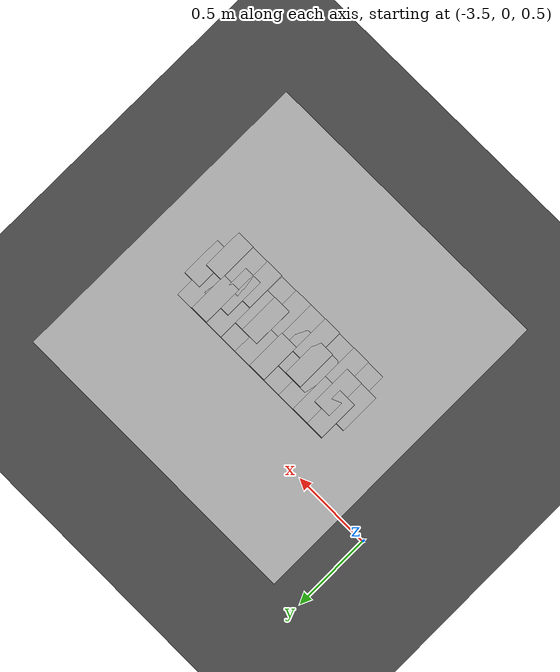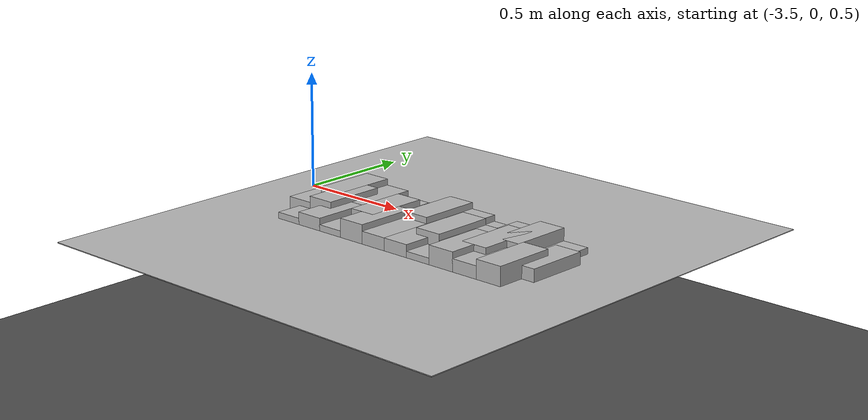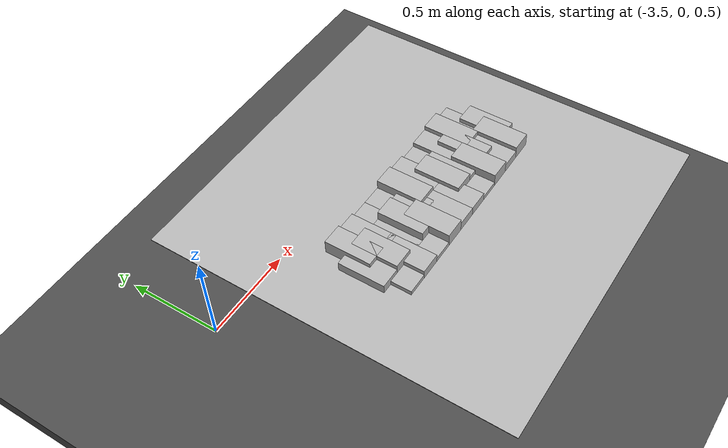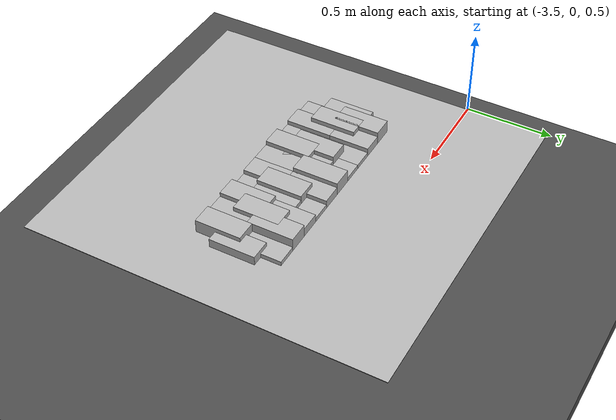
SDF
<sdf version="1.6">
 <world name="default">
  <model name="ground_plane">
   <static>1</static>
   <link name="link">
    <collision name="collision">
     <geometry><plane><normal>0 0 1</normal><size>100 100</size></plane></geometry>
     <surface><friction><ode><mu>100</mu><mu2>50</mu2></ode></friction></surface>
    </collision>
    <visual name="visual">
     <cast_shadows>0</cast_shadows>
     <geometry><plane><normal>0 0 1</normal><size>100 100</size></plane></geometry>
     <material>
      <script><uri>file://media/materials/scripts/gazebo.material</uri><name>Gazebo/Grey</name></script>
     </material>
    </visual>
   </link>
  </model>
  <model name="frc2016_roughterrain_0">
   <link name="link_clone_8">
    <pose>-2.257 -0.51186 -0.073164 0 -0 0</pose>
    <inertial>
     <inertia><ixx>nan</ixx><ixy>0</ixy><ixz>0</ixz><iyy>nan</iyy><iyz>0</iyz><izz>nan</izz></inertia>
     <mass>0</mass>
    </inertial>
    <visual name="row1_block5_md">
     <pose>0.05715 0.1143 0.10968 0 -0 0</pose>
     <geometry><box><size>0.115452 0.257474 0.0508</size></box></geometry>
     <material><shader type="pixel"/></material>
    </visual>
    <visual name="row1_block3_md">
     <pose>0.28575 0.1143 0.10968 0 -0 0</pose>
     <geometry><box><size>0.115452 0.257474 0.0508</size></box></geometry>
     <material><shader type="pixel"/></material>
    </visual>
    <visual name="row1_block6_lg">
     <pose>-0.05715 0.1143 0.12238 0 -0 0</pose>
     <geometry><box><size>0.115452 0.257474 0.0762</size></box></geometry>
     <material><shader type="pixel"/></material>
    </visual>
    <visual name="row1_block4_sm">
     <pose>0.17145 0.1143 0.09698 0 -0 0</pose>
     <geometry><box><size>0.115452 0.257474 0.0254</size></box></geometry>
     <material><shader type="pixel"/></material>
    </visual>
    <visual name="platform">
     <pose>0 0 0.08269 0 -0 0</pose>
     <geometry><box><size>1.91826 2.01688 0.003175</size></box></geometry>
     <material><shader type="pixel"/></material>
    </visual>
    <visual name="row1_block1_sm">
     <pose>0.51435 0.1143 0.09698 0 -0 0</pose>
     <geometry><box><size>0.115452 0.257474 0.0254</size></box></geometry>
     <material><shader type="pixel"/></material>
    </visual>
    <visual name="row1_block2_lg">
     <pose>0.40005 0.1143 0.12238 0 -0 0</pose>
     <geometry><box><size>0.115452 0.257474 0.0762</size></box></geometry>
     <material><shader type="pixel"/></material>
    </visual>
    <visual name="row1_block7_sm">
     <pose>-0.17145 0.1143 0.09698 0 -0 0</pose>
     <geometry><box><size>0.115452 0.257474 0.0254</size></box></geometry>
     <material><shader type="pixel"/></material>
    </visual>
    <visual name="row1_block8_sm">
     <pose>-0.28575 0.1143 0.09698 0 -0 0</pose>
     <geometry><box><size>0.115452 0.257474 0.0254</size></box></geometry>
     <material><shader type="pixel"/></material>
    </visual>
    <visual name="row1_block10_lg">
     <pose>-0.51435 0.1143 0.12238 0 -0 0</pose>
     <geometry><box><size>0.115452 0.257474 0.0762</size></box></geometry>
     <material><shader type="pixel"/></material>
    </visual>
    <visual name="row1_block9_md">
     <pose>-0.40005 0.1143 0.10968 0 -0 0</pose>
     <geometry><box><size>0.115452 0.257474 0.0508</size></box></geometry>
     <material><shader type="pixel"/></material>
    </visual>
    <visual name="row2_block1_md">
     <pose>0.5715 0 0.10968 0 -0 0</pose>
     <geometry><box><size>0.115452 0.257474 0.0508</size></box></geometry>
     <material><shader type="pixel"/></material>
    </visual>
    <visual name="row2_block2_sm">
     <pose>0.4572 0 0.09698 0 -0 0</pose>
     <geometry><box><size>0.115452 0.257474 0.0254</size></box></geometry>
     <material><shader type="pixel"/></material>
    </visual>
    <visual name="row2_block3_lg">
     <pose>0.3429 0 0.12238 0 -0 0</pose>
     <geometry><box><size>0.115452 0.257474 0.0762</size></box></geometry>
     <material><shader type="pixel"/></material>
    </visual>
    <visual name="row2_block4_md">
     <pose>0.2286 0 0.10968 0 -0 0</pose>
     <geometry><box><size>0.115452 0.257474 0.0508</size></box></geometry>
     <material><shader type="pixel"/></material>
    </visual>
    <visual name="row2_block5_lg">
     <pose>0.1143 0 0.12238 0 -0 0</pose>
     <geometry><box><size>0.115452 0.257474 0.0762</size></box></geometry>
     <material><shader type="pixel"/></material>
    </visual>
    <visual name="row2_block6_sm">
     <pose>0 0 0.09698 0 -0 0</pose>
     <geometry><box><size>0.115452 0.257474 0.0254</size></box></geometry>
     <material><shader type="pixel"/></material>
    </visual>
    <visual name="row2_block7_md">
     <pose>-0.1143 0 0.10968 0 -0 0</pose>
     <geometry><box><size>0.115452 0.257474 0.0508</size></box></geometry>
     <material><shader type="pixel"/></material>
    </visual>
    <visual name="row2_block8_lg">
     <pose>-0.2286 0 0.12238 0 -0 0</pose>
     <geometry><box><size>0.115452 0.257474 0.0762</size></box></geometry>
     <material><shader type="pixel"/></material>
    </visual>
    <visual name="row2_block9_sm">
     <pose>-0.3429 0 0.09698 0 -0 0</pose>
     <geometry><box><size>0.115452 0.257474 0.0254</size></box></geometry>
     <material><shader type="pixel"/></material>
    </visual>
    <visual name="row2_block10_lg">
     <pose>-0.4572 0 0.12238 0 -0 0</pose>
     <geometry><box><size>0.115452 0.257474 0.0762</size></box></geometry>
     <material><shader type="pixel"/></material>
    </visual>
    <visual name="row2_block11_md">
     <pose>-0.5715 0 0.10968 0 -0 0</pose>
     <geometry><box><size>0.115452 0.257474 0.0508</size></box></geometry>
     <material><shader type="pixel"/></material>
    </visual>
    <visual name="row3_block2_md">
     <pose>0.40005 -0.1143 0.10968 0 -0 0</pose>
     <geometry><box><size>0.115452 0.257474 0.0508</size></box></geometry>
     <material><shader type="pixel"/></material>
    </visual>
    <visual name="row3_block1_lg">
     <pose>0.51435 -0.1143 0.12238 0 -0 0</pose>
     <geometry><box><size>0.115452 0.257474 0.0762</size></box></geometry>
     <material><shader type="pixel"/></material>
    </visual>
    <visual name="row3_block3_lg">
     <pose>0.28575 -0.1143 0.12238 0 -0 0</pose>
     <geometry><box><size>0.115452 0.257474 0.0762</size></box></geometry>
     <material><shader type="pixel"/></material>
    </visual>
    <visual name="row3_block4_sm">
     <pose>0.17145 -0.1143 0.09698 0 -0 0</pose>
     <geometry><box><size>0.115452 0.257474 0.0254</size></box></geometry>
     <material><shader type="pixel"/></material>
    </visual>
    <visual name="row3_block5_md">
     <pose>0.05715 -0.1143 0.10968 0 -0 0</pose>
     <geometry><box><size>0.115452 0.257474 0.0508</size></box></geometry>
     <material><shader type="pixel"/></material>
    </visual>
    <visual name="row3_block6_md">
     <pose>-0.05715 -0.1143 0.10968 0 -0 0</pose>
     <geometry><box><size>0.115452 0.257474 0.0508</size></box></geometry>
     <material><shader type="pixel"/></material>
    </visual>
    <visual name="row3_block8_sm">
     <pose>-0.28575 -0.1143 0.09698 0 -0 0</pose>
     <geometry><box><size>0.115452 0.257474 0.0254</size></box></geometry>
     <material><shader type="pixel"/></material>
    </visual>
    <visual name="row3_block7_lg">
     <pose>-0.17145 -0.1143 0.12238 0 -0 0</pose>
     <geometry><box><size>0.115452 0.257474 0.0762</size></box></geometry>
     <material><shader type="pixel"/></material>
    </visual>
    <visual name="row3_block9_md">
     <pose>-0.40005 -0.1143 0.10968 0 -0 0</pose>
     <geometry><box><size>0.115452 0.257474 0.0508</size></box></geometry>
     <material><shader type="pixel"/></material>
    </visual>
    <visual name="row3_block10_sm">
     <pose>-0.51435 -0.1143 0.09698 0 -0 0</pose>
     <geometry><box><size>0.115452 0.257474 0.0254</size></box></geometry>
     <material><shader type="pixel"/></material>
    </visual>
    <collision name="row2_block5_lg_0">
     <pose>0.1143 0 0.12238 0 -0 0</pose>
     <geometry><box><size>0.115452 0.257474 0.0762</size></box></geometry>
     <surface>
      <friction>
       <ode><mu>1</mu><mu2>1</mu2><fdir1>0 0 0</fdir1><slip1>0</slip1><slip2>0</slip2></ode>
       <torsional>
        <coefficient>1</coefficient>
        <patch_radius>0</patch_radius>
        <surface_radius>0</surface_radius>
        <use_patch_radius>1</use_patch_radius>
        <ode><slip>0</slip></ode>
       </torsional>
      </friction>
      <bounce><restitution_coefficient>0</restitution_coefficient><threshold>1e+06</threshold></bounce>
      <contact>
       <collide_without_contact>0</collide_without_contact>
       <collide_without_contact_bitmask>1</collide_without_contact_bitmask>
       <collide_bitmask>1</collide_bitmask>
       <ode>
        <soft_cfm>0</soft_cfm>
        <soft_erp>0.2</soft_erp>
        <kp>1e+13</kp>
        <kd>1</kd>
        <max_vel>0.01</max_vel>
        <min_depth>0</min_depth>
       </ode>
       <bullet>
        <split_impulse>1</split_impulse>
        <split_impulse_penetration_threshold>-0.01</split_impulse_penetration_threshold>
        <soft_cfm>0</soft_cfm>
        <soft_erp>0.2</soft_erp>
        <kp>1e+13</kp>
        <kd>1</kd>
       </bullet>
      </contact>
     </surface>
    </collision>
    <collision name="platform_0">
     <pose>0 0 0.08269 0 -0 0</pose>
     <geometry><box><size>1.91826 2.01688 0.003175</size></box></geometry>
     <surface>
      <friction>
       <ode><mu>1</mu><mu2>1</mu2><fdir1>0 0 0</fdir1><slip1>0</slip1><slip2>0</slip2></ode>
       <torsional>
        <coefficient>1</coefficient>
        <patch_radius>0</patch_radius>
        <surface_radius>0</surface_radius>
        <use_patch_radius>1</use_patch_radius>
        <ode><slip>0</slip></ode>
       </torsional>
      </friction>
      <bounce><restitution_coefficient>0</restitution_coefficient><threshold>1e+06</threshold></bounce>
      <contact>
       <collide_without_contact>0</collide_without_contact>
       <collide_without_contact_bitmask>1</collide_without_contact_bitmask>
       <collide_bitmask>1</collide_bitmask>
       <ode>
        <soft_cfm>0</soft_cfm>
        <soft_erp>0.2</soft_erp>
        <kp>1e+13</kp>
        <kd>1</kd>
        <max_vel>0.01</max_vel>
        <min_depth>0</min_depth>
       </ode>
       <bullet>
        <split_impulse>1</split_impulse>
        <split_impulse_penetration_threshold>-0.01</split_impulse_penetration_threshold>
        <soft_cfm>0</soft_cfm>
        <soft_erp>0.2</soft_erp>
        <kp>1e+13</kp>
        <kd>1</kd>
       </bullet>
      </contact>
     </surface>
    </collision>
    <collision name="row1_block1_sm_0">
     <pose>0.51435 0.1143 0.09698 0 -0 0</pose>
     <geometry><box><size>0.115452 0.257474 0.0254</size></box></geometry>
     <surface>
      <friction>
       <ode><mu>1</mu><mu2>1</mu2><fdir1>0 0 0</fdir1><slip1>0</slip1><slip2>0</slip2></ode>
       <torsional>
        <coefficient>1</coefficient>
        <patch_radius>0</patch_radius>
        <surface_radius>0</surface_radius>
        <use_patch_radius>1</use_patch_radius>
        <ode><slip>0</slip></ode>
       </torsional>
      </friction>
      <bounce><restitution_coefficient>0</restitution_coefficient><threshold>1e+06</threshold></bounce>
      <contact>
       <collide_without_contact>0</collide_without_contact>
       <collide_without_contact_bitmask>1</collide_without_contact_bitmask>
       <collide_bitmask>1</collide_bitmask>
       <ode>
        <soft_cfm>0</soft_cfm>
        <soft_erp>0.2</soft_erp>
        <kp>1e+13</kp>
        <kd>1</kd>
        <max_vel>0.01</max_vel>
        <min_depth>0</min_depth>
       </ode>
       <bullet>
        <split_impulse>1</split_impulse>
        <split_impulse_penetration_threshold>-0.01</split_impulse_penetration_threshold>
        <soft_cfm>0</soft_cfm>
        <soft_erp>0.2</soft_erp>
        <kp>1e+13</kp>
        <kd>1</kd>
       </bullet>
      </contact>
     </surface>
    </collision>
    <collision name="row1_block3_md_0">
     <pose>0.28575 0.1143 0.10968 0 -0 0</pose>
     <geometry><box><size>0.115452 0.257474 0.0508</size></box></geometry>
     <surface>
      <friction>
       <ode><mu>1</mu><mu2>1</mu2><fdir1>0 0 0</fdir1><slip1>0</slip1><slip2>0</slip2></ode>
       <torsional>
        <coefficient>1</coefficient>
        <patch_radius>0</patch_radius>
        <surface_radius>0</surface_radius>
        <use_patch_radius>1</use_patch_radius>
        <ode><slip>0</slip></ode>
       </torsional>
      </friction>
      <bounce><restitution_coefficient>0</restitution_coefficient><threshold>1e+06</threshold></bounce>
      <contact>
       <collide_without_contact>0</collide_without_contact>
       <collide_without_contact_bitmask>1</collide_without_contact_bitmask>
       <collide_bitmask>1</collide_bitmask>
       <ode>
        <soft_cfm>0</soft_cfm>
        <soft_erp>0.2</soft_erp>
        <kp>1e+13</kp>
        <kd>1</kd>
        <max_vel>0.01</max_vel>
        <min_depth>0</min_depth>
       </ode>
       <bullet>
        <split_impulse>1</split_impulse>
        <split_impulse_penetration_threshold>-0.01</split_impulse_penetration_threshold>
        <soft_cfm>0</soft_cfm>
        <soft_erp>0.2</soft_erp>
        <kp>1e+13</kp>
        <kd>1</kd>
       </bullet>
      </contact>
     </surface>
    </collision>
    <collision name="row1_block2_lg_0">
     <pose>0.40005 0.1143 0.12238 0 -0 0</pose>
     <geometry><box><size>0.115452 0.257474 0.0762</size></box></geometry>
     <surface>
      <friction>
       <ode><mu>1</mu><mu2>1</mu2><fdir1>0 0 0</fdir1><slip1>0</slip1><slip2>0</slip2></ode>
       <torsional>
        <coefficient>1</coefficient>
        <patch_radius>0</patch_radius>
        <surface_radius>0</surface_radius>
        <use_patch_radius>1</use_patch_radius>
        <ode><slip>0</slip></ode>
       </torsional>
      </friction>
      <bounce><restitution_coefficient>0</restitution_coefficient><threshold>1e+06</threshold></bounce>
      <contact>
       <collide_without_contact>0</collide_without_contact>
       <collide_without_contact_bitmask>1</collide_without_contact_bitmask>
       <collide_bitmask>1</collide_bitmask>
       <ode>
        <soft_cfm>0</soft_cfm>
        <soft_erp>0.2</soft_erp>
        <kp>1e+13</kp>
        <kd>1</kd>
        <max_vel>0.01</max_vel>
        <min_depth>0</min_depth>
       </ode>
       <bullet>
        <split_impulse>1</split_impulse>
        <split_impulse_penetration_threshold>-0.01</split_impulse_penetration_threshold>
        <soft_cfm>0</soft_cfm>
        <soft_erp>0.2</soft_erp>
        <kp>1e+13</kp>
        <kd>1</kd>
       </bullet>
      </contact>
     </surface>
    </collision>
    <collision name="row1_block5_md_0">
     <pose>0.05715 0.1143 0.10968 0 -0 0</pose>
     <geometry><box><size>0.115452 0.257474 0.0508</size></box></geometry>
     <surface>
      <friction>
       <ode><mu>1</mu><mu2>1</mu2><fdir1>0 0 0</fdir1><slip1>0</slip1><slip2>0</slip2></ode>
       <torsional>
        <coefficient>1</coefficient>
        <patch_radius>0</patch_radius>
        <surface_radius>0</surface_radius>
        <use_patch_radius>1</use_patch_radius>
        <ode><slip>0</slip></ode>
       </torsional>
      </friction>
      <bounce><restitution_coefficient>0</restitution_coefficient><threshold>1e+06</threshold></bounce>
      <contact>
       <collide_without_contact>0</collide_without_contact>
       <collide_without_contact_bitmask>1</collide_without_contact_bitmask>
       <collide_bitmask>1</collide_bitmask>
       <ode>
        <soft_cfm>0</soft_cfm>
        <soft_erp>0.2</soft_erp>
        <kp>1e+13</kp>
        <kd>1</kd>
        <max_vel>0.01</max_vel>
        <min_depth>0</min_depth>
       </ode>
       <bullet>
        <split_impulse>1</split_impulse>
        <split_impulse_penetration_threshold>-0.01</split_impulse_penetration_threshold>
        <soft_cfm>0</soft_cfm>
        <soft_erp>0.2</soft_erp>
        <kp>1e+13</kp>
        <kd>1</kd>
       </bullet>
      </contact>
     </surface>
    </collision>
    <collision name="row1_block4_sm_0">
     <pose>0.17145 0.1143 0.09698 0 -0 0</pose>
     <geometry><box><size>0.115452 0.257474 0.0254</size></box></geometry>
     <surface>
      <friction>
       <ode><mu>1</mu><mu2>1</mu2><fdir1>0 0 0</fdir1><slip1>0</slip1><slip2>0</slip2></ode>
       <torsional>
        <coefficient>1</coefficient>
        <patch_radius>0</patch_radius>
        <surface_radius>0</surface_radius>
        <use_patch_radius>1</use_patch_radius>
        <ode><slip>0</slip></ode>
       </torsional>
      </friction>
      <bounce><restitution_coefficient>0</restitution_coefficient><threshold>1e+06</threshold></bounce>
      <contact>
       <collide_without_contact>0</collide_without_contact>
       <collide_without_contact_bitmask>1</collide_without_contact_bitmask>
       <collide_bitmask>1</collide_bitmask>
       <ode>
        <soft_cfm>0</soft_cfm>
        <soft_erp>0.2</soft_erp>
        <kp>1e+13</kp>
        <kd>1</kd>
        <max_vel>0.01</max_vel>
        <min_depth>0</min_depth>
       </ode>
       <bullet>
        <split_impulse>1</split_impulse>
        <split_impulse_penetration_threshold>-0.01</split_impulse_penetration_threshold>
        <soft_cfm>0</soft_cfm>
        <soft_erp>0.2</soft_erp>
        <kp>1e+13</kp>
        <kd>1</kd>
       </bullet>
      </contact>
     </surface>
    </collision>
    <collision name="row1_block8_sm_0">
     <pose>-0.28575 0.1143 0.09698 0 -0 0</pose>
     <geometry><box><size>0.115452 0.257474 0.0254</size></box></geometry>
     <surface>
      <friction>
       <ode><mu>1</mu><mu2>1</mu2><fdir1>0 0 0</fdir1><slip1>0</slip1><slip2>0</slip2></ode>
       <torsional>
        <coefficient>1</coefficient>
        <patch_radius>0</patch_radius>
        <surface_radius>0</surface_radius>
        <use_patch_radius>1</use_patch_radius>
        <ode><slip>0</slip></ode>
       </torsional>
      </friction>
      <bounce><restitution_coefficient>0</restitution_coefficient><threshold>1e+06</threshold></bounce>
      <contact>
       <collide_without_contact>0</collide_without_contact>
       <collide_without_contact_bitmask>1</collide_without_contact_bitmask>
       <collide_bitmask>1</collide_bitmask>
       <ode>
        <soft_cfm>0</soft_cfm>
        <soft_erp>0.2</soft_erp>
        <kp>1e+13</kp>
        <kd>1</kd>
        <max_vel>0.01</max_vel>
        <min_depth>0</min_depth>
       </ode>
       <bullet>
        <split_impulse>1</split_impulse>
        <split_impulse_penetration_threshold>-0.01</split_impulse_penetration_threshold>
        <soft_cfm>0</soft_cfm>
        <soft_erp>0.2</soft_erp>
        <kp>1e+13</kp>
        <kd>1</kd>
       </bullet>
      </contact>
     </surface>
    </collision>
    <collision name="row1_block6_lg_0">
     <pose>-0.05715 0.1143 0.12238 0 -0 0</pose>
     <geometry><box><size>0.115452 0.257474 0.0762</size></box></geometry>
     <surface>
      <friction>
       <ode><mu>1</mu><mu2>1</mu2><fdir1>0 0 0</fdir1><slip1>0</slip1><slip2>0</slip2></ode>
       <torsional>
        <coefficient>1</coefficient>
        <patch_radius>0</patch_radius>
        <surface_radius>0</surface_radius>
        <use_patch_radius>1</use_patch_radius>
        <ode><slip>0</slip></ode>
       </torsional>
      </friction>
      <bounce><restitution_coefficient>0</restitution_coefficient><threshold>1e+06</threshold></bounce>
      <contact>
       <collide_without_contact>0</collide_without_contact>
       <collide_without_contact_bitmask>1</collide_without_contact_bitmask>
       <collide_bitmask>1</collide_bitmask>
       <ode>
        <soft_cfm>0</soft_cfm>
        <soft_erp>0.2</soft_erp>
        <kp>1e+13</kp>
        <kd>1</kd>
        <max_vel>0.01</max_vel>
        <min_depth>0</min_depth>
       </ode>
       <bullet>
        <split_impulse>1</split_impulse>
        <split_impulse_penetration_threshold>-0.01</split_impulse_penetration_threshold>
        <soft_cfm>0</soft_cfm>
        <soft_erp>0.2</soft_erp>
        <kp>1e+13</kp>
        <kd>1</kd>
       </bullet>
      </contact>
     </surface>
    </collision>
    <collision name="row1_block7_sm_0">
     <pose>-0.17145 0.1143 0.09698 0 -0 0</pose>
     <geometry><box><size>0.115452 0.257474 0.0254</size></box></geometry>
     <surface>
      <friction>
       <ode><mu>1</mu><mu2>1</mu2><fdir1>0 0 0</fdir1><slip1>0</slip1><slip2>0</slip2></ode>
       <torsional>
        <coefficient>1</coefficient>
        <patch_radius>0</patch_radius>
        <surface_radius>0</surface_radius>
        <use_patch_radius>1</use_patch_radius>
        <ode><slip>0</slip></ode>
       </torsional>
      </friction>
      <bounce><restitution_coefficient>0</restitution_coefficient><threshold>1e+06</threshold></bounce>
      <contact>
       <collide_without_contact>0</collide_without_contact>
       <collide_without_contact_bitmask>1</collide_without_contact_bitmask>
       <collide_bitmask>1</collide_bitmask>
       <ode>
        <soft_cfm>0</soft_cfm>
        <soft_erp>0.2</soft_erp>
        <kp>1e+13</kp>
        <kd>1</kd>
        <max_vel>0.01</max_vel>
        <min_depth>0</min_depth>
       </ode>
       <bullet>
        <split_impulse>1</split_impulse>
        <split_impulse_penetration_threshold>-0.01</split_impulse_penetration_threshold>
        <soft_cfm>0</soft_cfm>
        <soft_erp>0.2</soft_erp>
        <kp>1e+13</kp>
        <kd>1</kd>
       </bullet>
      </contact>
     </surface>
    </collision>
    <collision name="row1_block10_lg_0">
     <pose>-0.51435 0.1143 0.12238 0 -0 0</pose>
     <geometry><box><size>0.115452 0.257474 0.0762</size></box></geometry>
     <surface>
      <friction>
       <ode><mu>1</mu><mu2>1</mu2><fdir1>0 0 0</fdir1><slip1>0</slip1><slip2>0</slip2></ode>
       <torsional>
        <coefficient>1</coefficient>
        <patch_radius>0</patch_radius>
        <surface_radius>0</surface_radius>
        <use_patch_radius>1</use_patch_radius>
        <ode><slip>0</slip></ode>
       </torsional>
      </friction>
      <bounce><restitution_coefficient>0</restitution_coefficient><threshold>1e+06</threshold></bounce>
      <contact>
       <collide_without_contact>0</collide_without_contact>
       <collide_without_contact_bitmask>1</collide_without_contact_bitmask>
       <collide_bitmask>1</collide_bitmask>
       <ode>
        <soft_cfm>0</soft_cfm>
        <soft_erp>0.2</soft_erp>
        <kp>1e+13</kp>
        <kd>1</kd>
        <max_vel>0.01</max_vel>
        <min_depth>0</min_depth>
       </ode>
       <bullet>
        <split_impulse>1</split_impulse>
        <split_impulse_penetration_threshold>-0.01</split_impulse_penetration_threshold>
        <soft_cfm>0</soft_cfm>
        <soft_erp>0.2</soft_erp>
        <kp>1e+13</kp>
        <kd>1</kd>
       </bullet>
      </contact>
     </surface>
    </collision>
    <collision name="row1_block9_md_0">
     <pose>-0.40005 0.1143 0.10968 0 -0 0</pose>
     <geometry><box><size>0.115452 0.257474 0.0508</size></box></geometry>
     <surface>
      <friction>
       <ode><mu>1</mu><mu2>1</mu2><fdir1>0 0 0</fdir1><slip1>0</slip1><slip2>0</slip2></ode>
       <torsional>
        <coefficient>1</coefficient>
        <patch_radius>0</patch_radius>
        <surface_radius>0</surface_radius>
        <use_patch_radius>1</use_patch_radius>
        <ode><slip>0</slip></ode>
       </torsional>
      </friction>
      <bounce><restitution_coefficient>0</restitution_coefficient><threshold>1e+06</threshold></bounce>
      <contact>
       <collide_without_contact>0</collide_without_contact>
       <collide_without_contact_bitmask>1</collide_without_contact_bitmask>
       <collide_bitmask>1</collide_bitmask>
       <ode>
        <soft_cfm>0</soft_cfm>
        <soft_erp>0.2</soft_erp>
        <kp>1e+13</kp>
        <kd>1</kd>
        <max_vel>0.01</max_vel>
        <min_depth>0</min_depth>
       </ode>
       <bullet>
        <split_impulse>1</split_impulse>
        <split_impulse_penetration_threshold>-0.01</split_impulse_penetration_threshold>
        <soft_cfm>0</soft_cfm>
        <soft_erp>0.2</soft_erp>
        <kp>1e+13</kp>
        <kd>1</kd>
       </bullet>
      </contact>
     </surface>
    </collision>
    <collision name="row2_block1_md_0">
     <pose>0.5715 0 0.10968 0 -0 0</pose>
     <geometry><box><size>0.115452 0.257474 0.0508</size></box></geometry>
     <surface>
      <friction>
       <ode><mu>1</mu><mu2>1</mu2><fdir1>0 0 0</fdir1><slip1>0</slip1><slip2>0</slip2></ode>
       <torsional>
        <coefficient>1</coefficient>
        <patch_radius>0</patch_radius>
        <surface_radius>0</surface_radius>
        <use_patch_radius>1</use_patch_radius>
        <ode><slip>0</slip></ode>
       </torsional>
      </friction>
      <bounce><restitution_coefficient>0</restitution_coefficient><threshold>1e+06</threshold></bounce>
      <contact>
       <collide_without_contact>0</collide_without_contact>
       <collide_without_contact_bitmask>1</collide_without_contact_bitmask>
       <collide_bitmask>1</collide_bitmask>
       <ode>
        <soft_cfm>0</soft_cfm>
        <soft_erp>0.2</soft_erp>
        <kp>1e+13</kp>
        <kd>1</kd>
        <max_vel>0.01</max_vel>
        <min_depth>0</min_depth>
       </ode>
       <bullet>
        <split_impulse>1</split_impulse>
        <split_impulse_penetration_threshold>-0.01</split_impulse_penetration_threshold>
        <soft_cfm>0</soft_cfm>
        <soft_erp>0.2</soft_erp>
        <kp>1e+13</kp>
        <kd>1</kd>
       </bullet>
      </contact>
     </surface>
    </collision>
    <collision name="row2_block2_sm_0">
     <pose>0.4572 0 0.09698 0 -0 0</pose>
     <geometry><box><size>0.115452 0.257474 0.0254</size></box></geometry>
     <surface>
      <friction>
       <ode><mu>1</mu><mu2>1</mu2><fdir1>0 0 0</fdir1><slip1>0</slip1><slip2>0</slip2></ode>
       <torsional>
        <coefficient>1</coefficient>
        <patch_radius>0</patch_radius>
        <surface_radius>0</surface_radius>
        <use_patch_radius>1</use_patch_radius>
        <ode><slip>0</slip></ode>
       </torsional>
      </friction>
      <bounce><restitution_coefficient>0</restitution_coefficient><threshold>1e+06</threshold></bounce>
      <contact>
       <collide_without_contact>0</collide_without_contact>
       <collide_without_contact_bitmask>1</collide_without_contact_bitmask>
       <collide_bitmask>1</collide_bitmask>
       <ode>
        <soft_cfm>0</soft_cfm>
        <soft_erp>0.2</soft_erp>
        <kp>1e+13</kp>
        <kd>1</kd>
        <max_vel>0.01</max_vel>
        <min_depth>0</min_depth>
       </ode>
       <bullet>
        <split_impulse>1</split_impulse>
        <split_impulse_penetration_threshold>-0.01</split_impulse_penetration_threshold>
        <soft_cfm>0</soft_cfm>
        <soft_erp>0.2</soft_erp>
        <kp>1e+13</kp>
        <kd>1</kd>
       </bullet>
      </contact>
     </surface>
    </collision>
    <collision name="row2_block4_md_0">
     <pose>0.2286 0 0.10968 0 -0 0</pose>
     <geometry><box><size>0.115452 0.257474 0.0508</size></box></geometry>
     <surface>
      <friction>
       <ode><mu>1</mu><mu2>1</mu2><fdir1>0 0 0</fdir1><slip1>0</slip1><slip2>0</slip2></ode>
       <torsional>
        <coefficient>1</coefficient>
        <patch_radius>0</patch_radius>
        <surface_radius>0</surface_radius>
        <use_patch_radius>1</use_patch_radius>
        <ode><slip>0</slip></ode>
       </torsional>
      </friction>
      <bounce><restitution_coefficient>0</restitution_coefficient><threshold>1e+06</threshold></bounce>
      <contact>
       <collide_without_contact>0</collide_without_contact>
       <collide_without_contact_bitmask>1</collide_without_contact_bitmask>
       <collide_bitmask>1</collide_bitmask>
       <ode>
        <soft_cfm>0</soft_cfm>
        <soft_erp>0.2</soft_erp>
        <kp>1e+13</kp>
        <kd>1</kd>
        <max_vel>0.01</max_vel>
        <min_depth>0</min_depth>
       </ode>
       <bullet>
        <split_impulse>1</split_impulse>
        <split_impulse_penetration_threshold>-0.01</split_impulse_penetration_threshold>
        <soft_cfm>0</soft_cfm>
        <soft_erp>0.2</soft_erp>
        <kp>1e+13</kp>
        <kd>1</kd>
       </bullet>
      </contact>
     </surface>
    </collision>
    <collision name="row2_block3_lg_0">
     <pose>0.3429 0 0.12238 0 -0 0</pose>
     <geometry><box><size>0.115452 0.257474 0.0762</size></box></geometry>
     <surface>
      <friction>
       <ode><mu>1</mu><mu2>1</mu2><fdir1>0 0 0</fdir1><slip1>0</slip1><slip2>0</slip2></ode>
       <torsional>
        <coefficient>1</coefficient>
        <patch_radius>0</patch_radius>
        <surface_radius>0</surface_radius>
        <use_patch_radius>1</use_patch_radius>
        <ode><slip>0</slip></ode>
       </torsional>
      </friction>
      <bounce><restitution_coefficient>0</restitution_coefficient><threshold>1e+06</threshold></bounce>
      <contact>
       <collide_without_contact>0</collide_without_contact>
       <collide_without_contact_bitmask>1</collide_without_contact_bitmask>
       <collide_bitmask>1</collide_bitmask>
       <ode>
        <soft_cfm>0</soft_cfm>
        <soft_erp>0.2</soft_erp>
        <kp>1e+13</kp>
        <kd>1</kd>
        <max_vel>0.01</max_vel>
        <min_depth>0</min_depth>
       </ode>
       <bullet>
        <split_impulse>1</split_impulse>
        <split_impulse_penetration_threshold>-0.01</split_impulse_penetration_threshold>
        <soft_cfm>0</soft_cfm>
        <soft_erp>0.2</soft_erp>
        <kp>1e+13</kp>
        <kd>1</kd>
       </bullet>
      </contact>
     </surface>
    </collision>
    <collision name="row2_block6_sm_0">
     <pose>0 0 0.09698 0 -0 0</pose>
     <geometry><box><size>0.115452 0.257474 0.0254</size></box></geometry>
     <surface>
      <friction>
       <ode><mu>1</mu><mu2>1</mu2><fdir1>0 0 0</fdir1><slip1>0</slip1><slip2>0</slip2></ode>
       <torsional>
        <coefficient>1</coefficient>
        <patch_radius>0</patch_radius>
        <surface_radius>0</surface_radius>
        <use_patch_radius>1</use_patch_radius>
        <ode><slip>0</slip></ode>
       </torsional>
      </friction>
      <bounce><restitution_coefficient>0</restitution_coefficient><threshold>1e+06</threshold></bounce>
      <contact>
       <collide_without_contact>0</collide_without_contact>
       <collide_without_contact_bitmask>1</collide_without_contact_bitmask>
       <collide_bitmask>1</collide_bitmask>
       <ode>
        <soft_cfm>0</soft_cfm>
        <soft_erp>0.2</soft_erp>
        <kp>1e+13</kp>
        <kd>1</kd>
        <max_vel>0.01</max_vel>
        <min_depth>0</min_depth>
       </ode>
       <bullet>
        <split_impulse>1</split_impulse>
        <split_impulse_penetration_threshold>-0.01</split_impulse_penetration_threshold>
        <soft_cfm>0</soft_cfm>
        <soft_erp>0.2</soft_erp>
        <kp>1e+13</kp>
        <kd>1</kd>
       </bullet>
      </contact>
     </surface>
    </collision>
    <collision name="row2_block7_md_0">
     <pose>-0.1143 0 0.10968 0 -0 0</pose>
     <geometry><box><size>0.115452 0.257474 0.0508</size></box></geometry>
     <surface>
      <friction>
       <ode><mu>1</mu><mu2>1</mu2><fdir1>0 0 0</fdir1><slip1>0</slip1><slip2>0</slip2></ode>
       <torsional>
        <coefficient>1</coefficient>
        <patch_radius>0</patch_radius>
        <surface_radius>0</surface_radius>
        <use_patch_radius>1</use_patch_radius>
        <ode><slip>0</slip></ode>
       </torsional>
      </friction>
      <bounce><restitution_coefficient>0</restitution_coefficient><threshold>1e+06</threshold></bounce>
      <contact>
       <collide_without_contact>0</collide_without_contact>
       <collide_without_contact_bitmask>1</collide_without_contact_bitmask>
       <collide_bitmask>1</collide_bitmask>
       <ode>
        <soft_cfm>0</soft_cfm>
        <soft_erp>0.2</soft_erp>
        <kp>1e+13</kp>
        <kd>1</kd>
        <max_vel>0.01</max_vel>
        <min_depth>0</min_depth>
       </ode>
       <bullet>
        <split_impulse>1</split_impulse>
        <split_impulse_penetration_threshold>-0.01</split_impulse_penetration_threshold>
        <soft_cfm>0</soft_cfm>
        <soft_erp>0.2</soft_erp>
        <kp>1e+13</kp>
        <kd>1</kd>
       </bullet>
      </contact>
     </surface>
    </collision>
    <collision name="row2_block10_lg_0">
     <pose>-0.4572 0 0.12238 0 -0 0</pose>
     <geometry><box><size>0.115452 0.257474 0.0762</size></box></geometry>
     <surface>
      <friction>
       <ode><mu>1</mu><mu2>1</mu2><fdir1>0 0 0</fdir1><slip1>0</slip1><slip2>0</slip2></ode>
       <torsional>
        <coefficient>1</coefficient>
        <patch_radius>0</patch_radius>
        <surface_radius>0</surface_radius>
        <use_patch_radius>1</use_patch_radius>
        <ode><slip>0</slip></ode>
       </torsional>
      </friction>
      <bounce><restitution_coefficient>0</restitution_coefficient><threshold>1e+06</threshold></bounce>
      <contact>
       <collide_without_contact>0</collide_without_contact>
       <collide_without_contact_bitmask>1</collide_without_contact_bitmask>
       <collide_bitmask>1</collide_bitmask>
       <ode>
        <soft_cfm>0</soft_cfm>
        <soft_erp>0.2</soft_erp>
        <kp>1e+13</kp>
        <kd>1</kd>
        <max_vel>0.01</max_vel>
        <min_depth>0</min_depth>
       </ode>
       <bullet>
        <split_impulse>1</split_impulse>
        <split_impulse_penetration_threshold>-0.01</split_impulse_penetration_threshold>
        <soft_cfm>0</soft_cfm>
        <soft_erp>0.2</soft_erp>
        <kp>1e+13</kp>
        <kd>1</kd>
       </bullet>
      </contact>
     </surface>
    </collision>
    <collision name="row2_block11_md_0">
     <pose>-0.5715 0 0.10968 0 -0 0</pose>
     <geometry><box><size>0.115452 0.257474 0.0508</size></box></geometry>
     <surface>
      <friction>
       <ode><mu>1</mu><mu2>1</mu2><fdir1>0 0 0</fdir1><slip1>0</slip1><slip2>0</slip2></ode>
       <torsional>
        <coefficient>1</coefficient>
        <patch_radius>0</patch_radius>
        <surface_radius>0</surface_radius>
        <use_patch_radius>1</use_patch_radius>
        <ode><slip>0</slip></ode>
       </torsional>
      </friction>
      <bounce><restitution_coefficient>0</restitution_coefficient><threshold>1e+06</threshold></bounce>
      <contact>
       <collide_without_contact>0</collide_without_contact>
       <collide_without_contact_bitmask>1</collide_without_contact_bitmask>
       <collide_bitmask>1</collide_bitmask>
       <ode>
        <soft_cfm>0</soft_cfm>
        <soft_erp>0.2</soft_erp>
        <kp>1e+13</kp>
        <kd>1</kd>
        <max_vel>0.01</max_vel>
        <min_depth>0</min_depth>
       </ode>
       <bullet>
        <split_impulse>1</split_impulse>
        <split_impulse_penetration_threshold>-0.01</split_impulse_penetration_threshold>
        <soft_cfm>0</soft_cfm>
        <soft_erp>0.2</soft_erp>
        <kp>1e+13</kp>
        <kd>1</kd>
       </bullet>
      </contact>
     </surface>
    </collision>
    <collision name="row2_block9_sm_0">
     <pose>-0.3429 0 0.09698 0 -0 0</pose>
     <geometry><box><size>0.115452 0.257474 0.0254</size></box></geometry>
     <surface>
      <friction>
       <ode><mu>1</mu><mu2>1</mu2><fdir1>0 0 0</fdir1><slip1>0</slip1><slip2>0</slip2></ode>
       <torsional>
        <coefficient>1</coefficient>
        <patch_radius>0</patch_radius>
        <surface_radius>0</surface_radius>
        <use_patch_radius>1</use_patch_radius>
        <ode><slip>0</slip></ode>
       </torsional>
      </friction>
      <bounce><restitution_coefficient>0</restitution_coefficient><threshold>1e+06</threshold></bounce>
      <contact>
       <collide_without_contact>0</collide_without_contact>
       <collide_without_contact_bitmask>1</collide_without_contact_bitmask>
       <collide_bitmask>1</collide_bitmask>
       <ode>
        <soft_cfm>0</soft_cfm>
        <soft_erp>0.2</soft_erp>
        <kp>1e+13</kp>
        <kd>1</kd>
        <max_vel>0.01</max_vel>
        <min_depth>0</min_depth>
       </ode>
       <bullet>
        <split_impulse>1</split_impulse>
        <split_impulse_penetration_threshold>-0.01</split_impulse_penetration_threshold>
        <soft_cfm>0</soft_cfm>
        <soft_erp>0.2</soft_erp>
        <kp>1e+13</kp>
        <kd>1</kd>
       </bullet>
      </contact>
     </surface>
    </collision>
    <collision name="row2_block8_lg_0">
     <pose>-0.2286 0 0.12238 0 -0 0</pose>
     <geometry><box><size>0.115452 0.257474 0.0762</size></box></geometry>
     <surface>
      <friction>
       <ode><mu>1</mu><mu2>1</mu2><fdir1>0 0 0</fdir1><slip1>0</slip1><slip2>0</slip2></ode>
       <torsional>
        <coefficient>1</coefficient>
        <patch_radius>0</patch_radius>
        <surface_radius>0</surface_radius>
        <use_patch_radius>1</use_patch_radius>
        <ode><slip>0</slip></ode>
       </torsional>
      </friction>
      <bounce><restitution_coefficient>0</restitution_coefficient><threshold>1e+06</threshold></bounce>
      <contact>
       <collide_without_contact>0</collide_without_contact>
       <collide_without_contact_bitmask>1</collide_without_contact_bitmask>
       <collide_bitmask>1</collide_bitmask>
       <ode>
        <soft_cfm>0</soft_cfm>
        <soft_erp>0.2</soft_erp>
        <kp>1e+13</kp>
        <kd>1</kd>
        <max_vel>0.01</max_vel>
        <min_depth>0</min_depth>
       </ode>
       <bullet>
        <split_impulse>1</split_impulse>
        <split_impulse_penetration_threshold>-0.01</split_impulse_penetration_threshold>
        <soft_cfm>0</soft_cfm>
        <soft_erp>0.2</soft_erp>
        <kp>1e+13</kp>
        <kd>1</kd>
       </bullet>
      </contact>
     </surface>
    </collision>
    <collision name="row3_block2_md_0">
     <pose>0.40005 -0.1143 0.10968 0 -0 0</pose>
     <geometry><box><size>0.115452 0.257474 0.0508</size></box></geometry>
     <surface>
      <friction>
       <ode><mu>1</mu><mu2>1</mu2><fdir1>0 0 0</fdir1><slip1>0</slip1><slip2>0</slip2></ode>
       <torsional>
        <coefficient>1</coefficient>
        <patch_radius>0</patch_radius>
        <surface_radius>0</surface_radius>
        <use_patch_radius>1</use_patch_radius>
        <ode><slip>0</slip></ode>
       </torsional>
      </friction>
      <bounce><restitution_coefficient>0</restitution_coefficient><threshold>1e+06</threshold></bounce>
      <contact>
       <collide_without_contact>0</collide_without_contact>
       <collide_without_contact_bitmask>1</collide_without_contact_bitmask>
       <collide_bitmask>1</collide_bitmask>
       <ode>
        <soft_cfm>0</soft_cfm>
        <soft_erp>0.2</soft_erp>
        <kp>1e+13</kp>
        <kd>1</kd>
        <max_vel>0.01</max_vel>
        <min_depth>0</min_depth>
       </ode>
       <bullet>
        <split_impulse>1</split_impulse>
        <split_impulse_penetration_threshold>-0.01</split_impulse_penetration_threshold>
        <soft_cfm>0</soft_cfm>
        <soft_erp>0.2</soft_erp>
        <kp>1e+13</kp>
        <kd>1</kd>
       </bullet>
      </contact>
     </surface>
    </collision>
    <collision name="row3_block4_sm_0">
     <pose>0.17145 -0.1143 0.09698 0 -0 0</pose>
     <geometry><box><size>0.115452 0.257474 0.0254</size></box></geometry>
     <surface>
      <friction>
       <ode><mu>1</mu><mu2>1</mu2><fdir1>0 0 0</fdir1><slip1>0</slip1><slip2>0</slip2></ode>
       <torsional>
        <coefficient>1</coefficient>
        <patch_radius>0</patch_radius>
        <surface_radius>0</surface_radius>
        <use_patch_radius>1</use_patch_radius>
        <ode><slip>0</slip></ode>
       </torsional>
      </friction>
      <bounce><restitution_coefficient>0</restitution_coefficient><threshold>1e+06</threshold></bounce>
      <contact>
       <collide_without_contact>0</collide_without_contact>
       <collide_without_contact_bitmask>1</collide_without_contact_bitmask>
       <collide_bitmask>1</collide_bitmask>
       <ode>
        <soft_cfm>0</soft_cfm>
        <soft_erp>0.2</soft_erp>
        <kp>1e+13</kp>
        <kd>1</kd>
        <max_vel>0.01</max_vel>
        <min_depth>0</min_depth>
       </ode>
       <bullet>
        <split_impulse>1</split_impulse>
        <split_impulse_penetration_threshold>-0.01</split_impulse_penetration_threshold>
        <soft_cfm>0</soft_cfm>
        <soft_erp>0.2</soft_erp>
        <kp>1e+13</kp>
        <kd>1</kd>
       </bullet>
      </contact>
     </surface>
    </collision>
    <collision name="row3_block1_lg_0">
     <pose>0.51435 -0.1143 0.12238 0 -0 0</pose>
     <geometry><box><size>0.115452 0.257474 0.0762</size></box></geometry>
     <surface>
      <friction>
       <ode><mu>1</mu><mu2>1</mu2><fdir1>0 0 0</fdir1><slip1>0</slip1><slip2>0</slip2></ode>
       <torsional>
        <coefficient>1</coefficient>
        <patch_radius>0</patch_radius>
        <surface_radius>0</surface_radius>
        <use_patch_radius>1</use_patch_radius>
        <ode><slip>0</slip></ode>
       </torsional>
      </friction>
      <bounce><restitution_coefficient>0</restitution_coefficient><threshold>1e+06</threshold></bounce>
      <contact>
       <collide_without_contact>0</collide_without_contact>
       <collide_without_contact_bitmask>1</collide_without_contact_bitmask>
       <collide_bitmask>1</collide_bitmask>
       <ode>
        <soft_cfm>0</soft_cfm>
        <soft_erp>0.2</soft_erp>
        <kp>1e+13</kp>
        <kd>1</kd>
        <max_vel>0.01</max_vel>
        <min_depth>0</min_depth>
       </ode>
       <bullet>
        <split_impulse>1</split_impulse>
        <split_impulse_penetration_threshold>-0.01</split_impulse_penetration_threshold>
        <soft_cfm>0</soft_cfm>
        <soft_erp>0.2</soft_erp>
        <kp>1e+13</kp>
        <kd>1</kd>
       </bullet>
      </contact>
     </surface>
    </collision>
    <collision name="row3_block3_lg_0">
     <pose>0.28575 -0.1143 0.12238 0 -0 0</pose>
     <geometry><box><size>0.115452 0.257474 0.0762</size></box></geometry>
     <surface>
      <friction>
       <ode><mu>1</mu><mu2>1</mu2><fdir1>0 0 0</fdir1><slip1>0</slip1><slip2>0</slip2></ode>
       <torsional>
        <coefficient>1</coefficient>
        <patch_radius>0</patch_radius>
        <surface_radius>0</surface_radius>
        <use_patch_radius>1</use_patch_radius>
        <ode><slip>0</slip></ode>
       </torsional>
      </friction>
      <bounce><restitution_coefficient>0</restitution_coefficient><threshold>1e+06</threshold></bounce>
      <contact>
       <collide_without_contact>0</collide_without_contact>
       <collide_without_contact_bitmask>1</collide_without_contact_bitmask>
       <collide_bitmask>1</collide_bitmask>
       <ode>
        <soft_cfm>0</soft_cfm>
        <soft_erp>0.2</soft_erp>
        <kp>1e+13</kp>
        <kd>1</kd>
        <max_vel>0.01</max_vel>
        <min_depth>0</min_depth>
       </ode>
       <bullet>
        <split_impulse>1</split_impulse>
        <split_impulse_penetration_threshold>-0.01</split_impulse_penetration_threshold>
        <soft_cfm>0</soft_cfm>
        <soft_erp>0.2</soft_erp>
        <kp>1e+13</kp>
        <kd>1</kd>
       </bullet>
      </contact>
     </surface>
    </collision>
    <collision name="row3_block5_md_0">
     <pose>0.05715 -0.1143 0.10968 0 -0 0</pose>
     <geometry><box><size>0.115452 0.257474 0.0508</size></box></geometry>
     <surface>
      <friction>
       <ode><mu>1</mu><mu2>1</mu2><fdir1>0 0 0</fdir1><slip1>0</slip1><slip2>0</slip2></ode>
       <torsional>
        <coefficient>1</coefficient>
        <patch_radius>0</patch_radius>
        <surface_radius>0</surface_radius>
        <use_patch_radius>1</use_patch_radius>
        <ode><slip>0</slip></ode>
       </torsional>
      </friction>
      <bounce><restitution_coefficient>0</restitution_coefficient><threshold>1e+06</threshold></bounce>
      <contact>
       <collide_without_contact>0</collide_without_contact>
       <collide_without_contact_bitmask>1</collide_without_contact_bitmask>
       <collide_bitmask>1</collide_bitmask>
       <ode>
        <soft_cfm>0</soft_cfm>
        <soft_erp>0.2</soft_erp>
        <kp>1e+13</kp>
        <kd>1</kd>
        <max_vel>0.01</max_vel>
        <min_depth>0</min_depth>
       </ode>
       <bullet>
        <split_impulse>1</split_impulse>
        <split_impulse_penetration_threshold>-0.01</split_impulse_penetration_threshold>
        <soft_cfm>0</soft_cfm>
        <soft_erp>0.2</soft_erp>
        <kp>1e+13</kp>
        <kd>1</kd>
       </bullet>
      </contact>
     </surface>
    </collision>
    <collision name="row3_block8_sm_0">
     <pose>-0.28575 -0.1143 0.09698 0 -0 0</pose>
     <geometry><box><size>0.115452 0.257474 0.0254</size></box></geometry>
     <surface>
      <friction>
       <ode><mu>1</mu><mu2>1</mu2><fdir1>0 0 0</fdir1><slip1>0</slip1><slip2>0</slip2></ode>
       <torsional>
        <coefficient>1</coefficient>
        <patch_radius>0</patch_radius>
        <surface_radius>0</surface_radius>
        <use_patch_radius>1</use_patch_radius>
        <ode><slip>0</slip></ode>
       </torsional>
      </friction>
      <bounce><restitution_coefficient>0</restitution_coefficient><threshold>1e+06</threshold></bounce>
      <contact>
       <collide_without_contact>0</collide_without_contact>
       <collide_without_contact_bitmask>1</collide_without_contact_bitmask>
       <collide_bitmask>1</collide_bitmask>
       <ode>
        <soft_cfm>0</soft_cfm>
        <soft_erp>0.2</soft_erp>
        <kp>1e+13</kp>
        <kd>1</kd>
        <max_vel>0.01</max_vel>
        <min_depth>0</min_depth>
       </ode>
       <bullet>
        <split_impulse>1</split_impulse>
        <split_impulse_penetration_threshold>-0.01</split_impulse_penetration_threshold>
        <soft_cfm>0</soft_cfm>
        <soft_erp>0.2</soft_erp>
        <kp>1e+13</kp>
        <kd>1</kd>
       </bullet>
      </contact>
     </surface>
    </collision>
    <collision name="row3_block7_lg_0">
     <pose>-0.17145 -0.1143 0.12238 0 -0 0</pose>
     <geometry><box><size>0.115452 0.257474 0.0762</size></box></geometry>
     <surface>
      <friction>
       <ode><mu>1</mu><mu2>1</mu2><fdir1>0 0 0</fdir1><slip1>0</slip1><slip2>0</slip2></ode>
       <torsional>
        <coefficient>1</coefficient>
        <patch_radius>0</patch_radius>
        <surface_radius>0</surface_radius>
        <use_patch_radius>1</use_patch_radius>
        <ode><slip>0</slip></ode>
       </torsional>
      </friction>
      <bounce><restitution_coefficient>0</restitution_coefficient><threshold>1e+06</threshold></bounce>
      <contact>
       <collide_without_contact>0</collide_without_contact>
       <collide_without_contact_bitmask>1</collide_without_contact_bitmask>
       <collide_bitmask>1</collide_bitmask>
       <ode>
        <soft_cfm>0</soft_cfm>
        <soft_erp>0.2</soft_erp>
        <kp>1e+13</kp>
        <kd>1</kd>
        <max_vel>0.01</max_vel>
        <min_depth>0</min_depth>
       </ode>
       <bullet>
        <split_impulse>1</split_impulse>
        <split_impulse_penetration_threshold>-0.01</split_impulse_penetration_threshold>
        <soft_cfm>0</soft_cfm>
        <soft_erp>0.2</soft_erp>
        <kp>1e+13</kp>
        <kd>1</kd>
       </bullet>
      </contact>
     </surface>
    </collision>
    <collision name="row3_block6_md_0">
     <pose>-0.05715 -0.1143 0.10968 0 -0 0</pose>
     <geometry><box><size>0.115452 0.257474 0.0508</size></box></geometry>
     <surface>
      <friction>
       <ode><mu>1</mu><mu2>1</mu2><fdir1>0 0 0</fdir1><slip1>0</slip1><slip2>0</slip2></ode>
       <torsional>
        <coefficient>1</coefficient>
        <patch_radius>0</patch_radius>
        <surface_radius>0</surface_radius>
        <use_patch_radius>1</use_patch_radius>
        <ode><slip>0</slip></ode>
       </torsional>
      </friction>
      <bounce><restitution_coefficient>0</restitution_coefficient><threshold>1e+06</threshold></bounce>
      <contact>
       <collide_without_contact>0</collide_without_contact>
       <collide_without_contact_bitmask>1</collide_without_contact_bitmask>
       <collide_bitmask>1</collide_bitmask>
       <ode>
        <soft_cfm>0</soft_cfm>
        <soft_erp>0.2</soft_erp>
        <kp>1e+13</kp>
        <kd>1</kd>
        <max_vel>0.01</max_vel>
        <min_depth>0</min_depth>
       </ode>
       <bullet>
        <split_impulse>1</split_impulse>
        <split_impulse_penetration_threshold>-0.01</split_impulse_penetration_threshold>
        <soft_cfm>0</soft_cfm>
        <soft_erp>0.2</soft_erp>
        <kp>1e+13</kp>
        <kd>1</kd>
       </bullet>
      </contact>
     </surface>
    </collision>
    <collision name="row3_block10_sm_0">
     <pose>-0.51435 -0.1143 0.09698 0 -0 0</pose>
     <geometry><box><size>0.115452 0.257474 0.0254</size></box></geometry>
     <surface>
      <friction>
       <ode><mu>1</mu><mu2>1</mu2><fdir1>0 0 0</fdir1><slip1>0</slip1><slip2>0</slip2></ode>
       <torsional>
        <coefficient>1</coefficient>
        <patch_radius>0</patch_radius>
        <surface_radius>0</surface_radius>
        <use_patch_radius>1</use_patch_radius>
        <ode><slip>0</slip></ode>
       </torsional>
      </friction>
      <bounce><restitution_coefficient>0</restitution_coefficient><threshold>1e+06</threshold></bounce>
      <contact>
       <collide_without_contact>0</collide_without_contact>
       <collide_without_contact_bitmask>1</collide_without_contact_bitmask>
       <collide_bitmask>1</collide_bitmask>
       <ode>
        <soft_cfm>0</soft_cfm>
        <soft_erp>0.2</soft_erp>
        <kp>1e+13</kp>
        <kd>1</kd>
        <max_vel>0.01</max_vel>
        <min_depth>0</min_depth>
       </ode>
       <bullet>
        <split_impulse>1</split_impulse>
        <split_impulse_penetration_threshold>-0.01</split_impulse_penetration_threshold>
        <soft_cfm>0</soft_cfm>
        <soft_erp>0.2</soft_erp>
        <kp>1e+13</kp>
        <kd>1</kd>
       </bullet>
      </contact>
     </surface>
    </collision>
    <collision name="row3_block9_md_0">
     <pose>-0.40005 -0.1143 0.10968 0 -0 0</pose>
     <geometry><box><size>0.115452 0.257474 0.0508</size></box></geometry>
     <surface>
      <friction>
       <ode><mu>1</mu><mu2>1</mu2><fdir1>0 0 0</fdir1><slip1>0</slip1><slip2>0</slip2></ode>
       <torsional>
        <coefficient>1</coefficient>
        <patch_radius>0</patch_radius>
        <surface_radius>0</surface_radius>
        <use_patch_radius>1</use_patch_radius>
        <ode><slip>0</slip></ode>
       </torsional>
      </friction>
      <bounce><restitution_coefficient>0</restitution_coefficient><threshold>1e+06</threshold></bounce>
      <contact>
       <collide_without_contact>0</collide_without_contact>
       <collide_without_contact_bitmask>1</collide_without_contact_bitmask>
       <collide_bitmask>1</collide_bitmask>
       <ode>
        <soft_cfm>0</soft_cfm>
        <soft_erp>0.2</soft_erp>
        <kp>1e+13</kp>
        <kd>1</kd>
        <max_vel>0.01</max_vel>
        <min_depth>0</min_depth>
       </ode>
       <bullet>
        <split_impulse>1</split_impulse>
        <split_impulse_penetration_threshold>-0.01</split_impulse_penetration_threshold>
        <soft_cfm>0</soft_cfm>
        <soft_erp>0.2</soft_erp>
        <kp>1e+13</kp>
        <kd>1</kd>
       </bullet>
      </contact>
     </surface>
    </collision>
   </link>
   <static>1</static>
   <pose>-0.10114 0.027351 0.636987 0 -0 0</pose>
  </model>
  <model name="asphalt_plane">
   <static>1</static>
   <link name="link">
    <collision name="collision"><geometry><box><size>20 20 0.1</size></box></geometry></collision>
    <visual name="visual">
     <cast_shadows>0</cast_shadows>
     <geometry><box><size>20 20 0.1</size></box></geometry>
     <material>
      <script>
       <uri>model://asphalt_plane/materials/scripts</uri>
       <uri>model://asphalt_plane/materials/textures</uri>
       <name>vrc/asphalt</name>
      </script>
     </material>
    </visual>
   </link>
   <pose>0.537328 0.29075 -0.013118 0 -0 0</pose>
  </model>
 </world>
</sdf>
